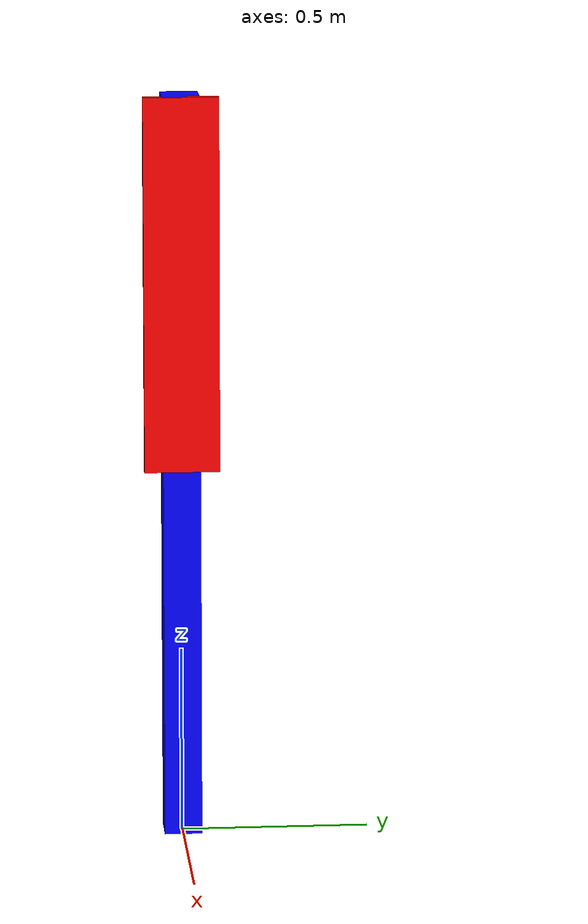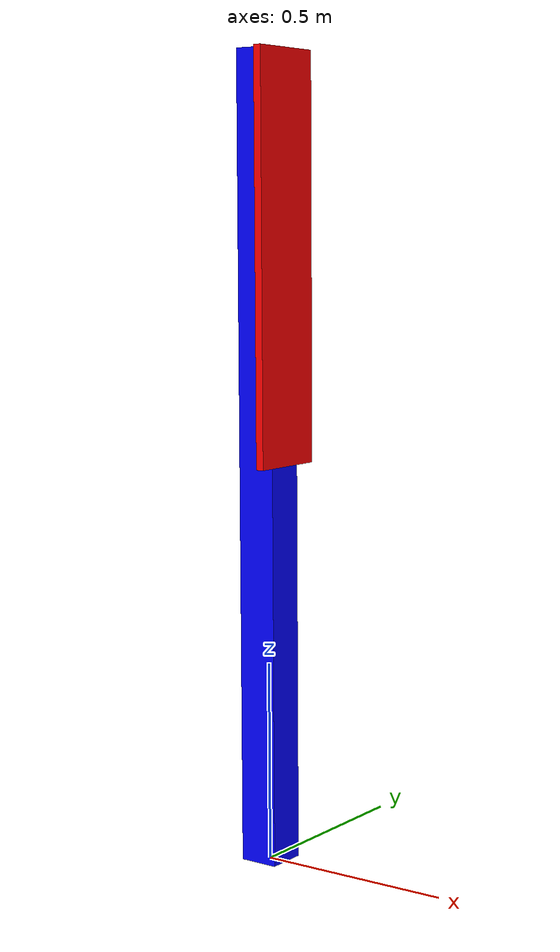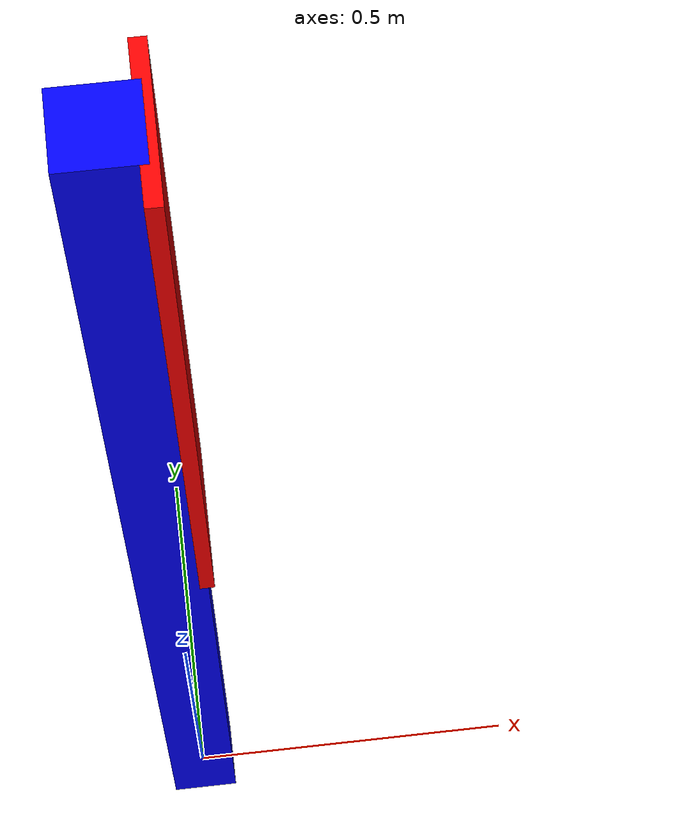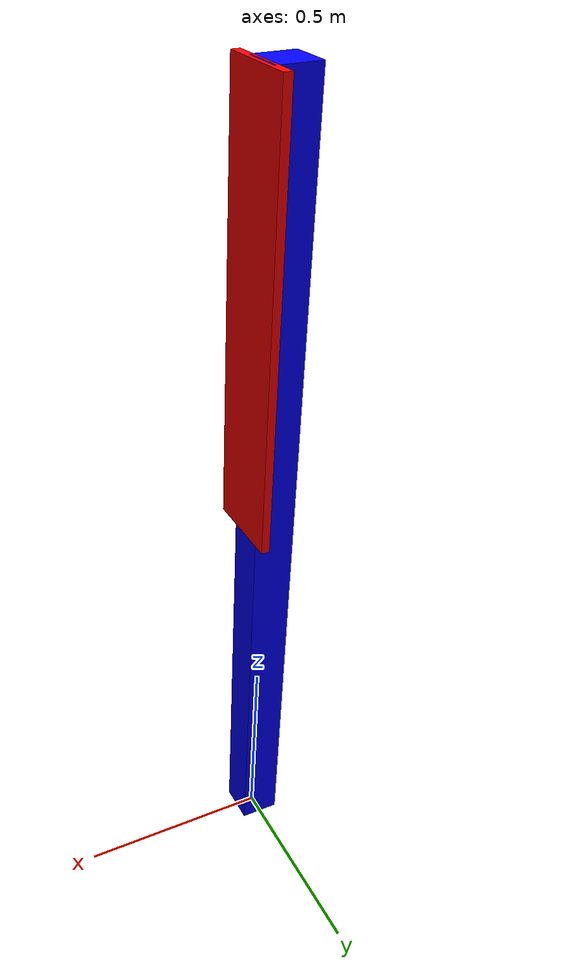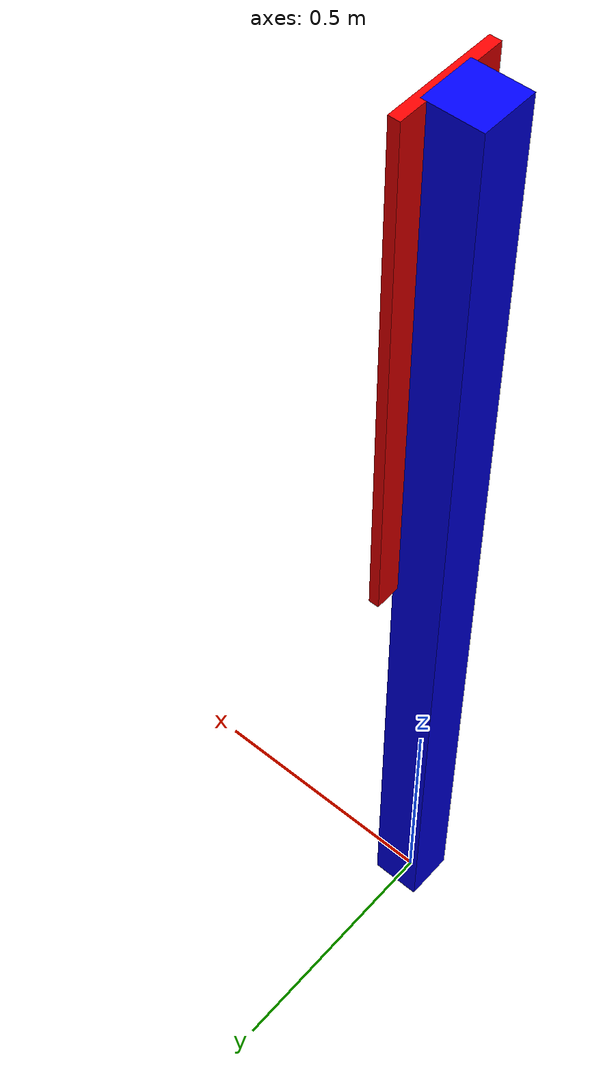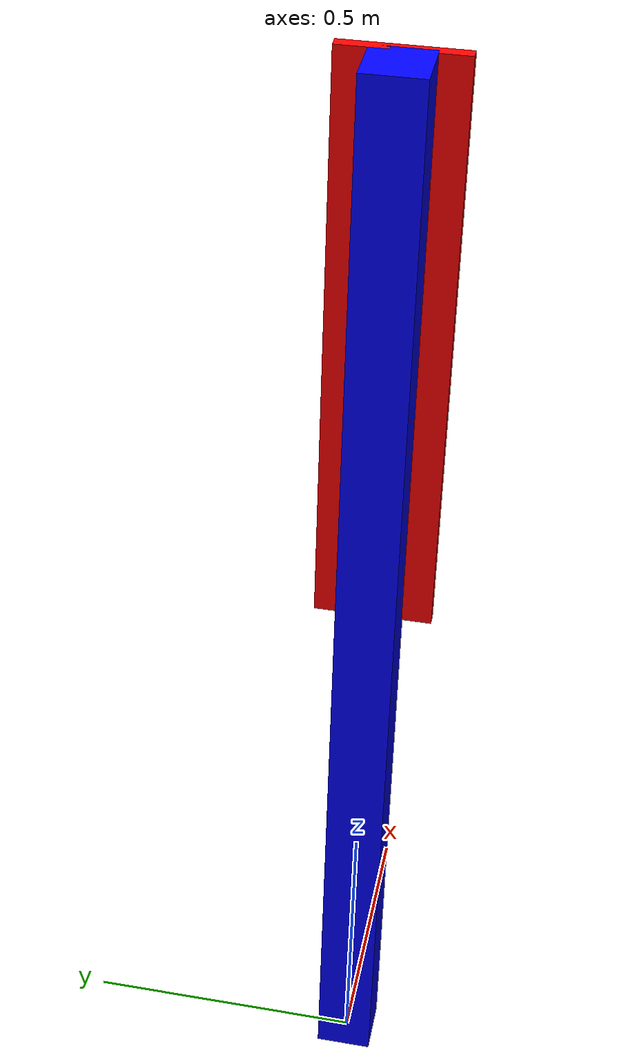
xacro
<robot name="windmill_robot" xmlns:xacro="http://www.ros.org/wiki/xacro">
    <xacro:property name="large_z" value="2.0"/>
    <xacro:property name="large_x" value="0.1"/>
    <xacro:property name="large_y" value="0.1"/>
    <xacro:property name="large_block_mass" value="100.0"/>

    <xacro:property name="small_x" value="0.02"/>
    <xacro:property name="small_z" value="0.2"/>
    <xacro:property name="small_y" value="1.0"/>
    <xacro:property name="small_block_mass" value="0.05"/>

    <!--large_block-->
    <link name="large_block">
        <inertial>
            <mass value="${large_block_mass}"/>
            <origin xyz="0 0 ${large_z/2}" rpy="0 0 0"/>
            <inertia ixx="${large_block_mass*(large_y**2 + large_z**2)/12}" ixy="0" ixz="0"
                     iyy="${large_block_mass*(large_x**2 + large_z**2)/12}" iyz="0"
                     izz="${large_block_mass*(large_x**2 + large_y**2)/12}"/>
        </inertial>
        <visual>
            <origin xyz="0 0 ${large_z/2}" rpy="0 0 0"/>
            <geometry>
                <box size="${large_x} ${large_y} ${large_z}"/>
            </geometry>
            <material name="blue">
                <color rgba="0 0 1 1"/>
            </material>
        </visual>
        <collision>
            <origin xyz="0 0 ${large_z/2}" rpy="0 0 0"/>
            <geometry>
                <box size="${large_x} ${large_y} ${large_z}"/>
            </geometry>
        </collision>
    </link>

    <!--small_block-->
    <link name="small_block">
        <inertial>
            <mass value="${small_block_mass}"/>
            <origin xyz="0 0 -0.5" rpy="0 0 0"/>
            <inertia ixx="${small_block_mass*(small_y**2 + small_z**2)/12}" ixy="0" ixz="0"
                     iyy="${small_block_mass*(small_x**2 + small_y**2)/12}" iyz="0"
                     izz="${small_block_mass*(small_x**2 + small_z**2)/12}"/>
        </inertial>
        <visual>
            <origin xyz="0 0 -0.5" rpy="0 0 0"/>
            <geometry>
                <box size="${small_x} ${small_z} ${small_y}"/>
            </geometry>
            <material name="red">
                <color rgba="1 0 0 1"/>
            </material>
        </visual>
        <collision>
            <origin xyz="0 0 -0.5" rpy="0 0 0"/>
            <geometry>
                <box size="${small_x} ${small_z} ${small_y}"/>
            </geometry>
        </collision>
    </link>

    <!-- Define the joint between the large and small blocks -->
    <joint name="rotation_joint" type="revolute">
        <parent link="large_block"/>
        <child link="small_block"/>
        <origin xyz="0.05 0 2.0" rpy="0 0 0"/>
        <axis xyz="1 0 0"/>
        <limit effort="1.0" velocity="1.69867" lower="-1e16" upper="1e16"/>
    </joint>

    <!-- Gazebo specific configurations -->
    <gazebo>
        <plugin name="ros_control" filename="libgazebo_ros_control.so">
        </plugin>
    </gazebo>
    <!-- Transmission for the joint -->
    <transmission name="rotation_joint_trans">
        <type>transmission_interface/SimpleTransmission</type>
        <joint name="rotation_joint">
            <hardwareInterface>hardware_interface/EffortJointInterface</hardwareInterface>
        </joint>
        <actuator name="rotation_joint_motor">
            <hardwareInterface>hardware_interface/EffortJointInterface</hardwareInterface>
            <mechanicalReduction>1</mechanicalReduction>
        </actuator>
    </transmission>

</robot>
